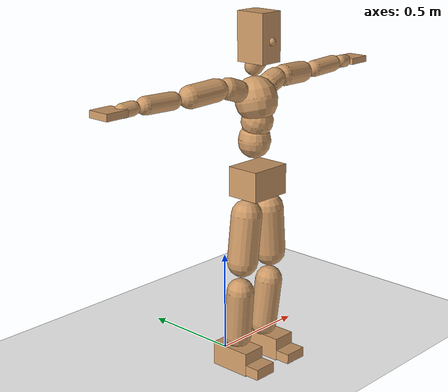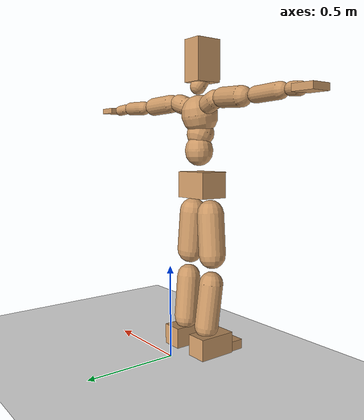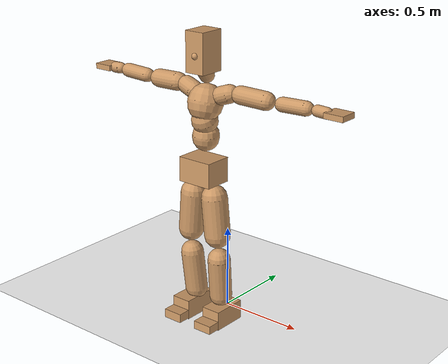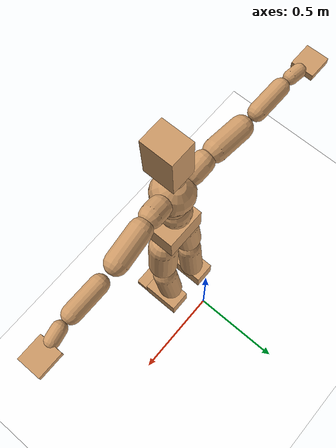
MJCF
<mujoco model="humanoid">
  <option integrator="implicitfast" />

  <visual>
    <global offwidth="1280" offheight="960" />
    <headlight active="1" ambient="0.34 0.34 0.34" diffuse="0.5 0.5 0.5" />
  </visual>

  <default>
    <joint damping="2" stiffness="2" armature="0.01" limited="true" solimplimit="0 .99 .01" />
    <geom condim="1" friction="0.7 0.005 0.0001" solimp=".99 .99 .003" solref="0.015 1" margin="0.001" rgba="0.8 0.6 .4 1" />
    <default class="smplcontact">
      <geom condim="3" friction="1. 0.005 0.0001" solref="0.015 1" solimp="0.98 0.98 0.001" priority="1" />
    </default>
    <default class="stiff_medium">
      <joint stiffness="10" />
    </default>
    <default class="stiff_medium_higher">
      <joint stiffness="50" />
    </default>
    <default class="stiff_high">
      <joint stiffness="100" />
    </default>
  </default>

  <asset>
    <texture type="skybox" builtin="gradient" rgb1="0.99 0.99 0.99" rgb2="0.608 0.828 0.892" width="100" />
    <texture builtin="flat" height="1278" mark="cross" markrgb="1 1 1" name="texgeom" random="0.01" rgb1="0.8 0.6 0.4" rgb2="0.8 0.6 0.4" type="cube" width="127" />
    <texture name="texplane" type="2d" builtin="checker" markrgb="1 1 1" rgb1="0.756 0.772 0.76" rgb2="0.6 0.6 0.6" width="100" height="100" />
    <material name="MatPlane" reflectance="0.5" texture="texplane" texrepeat="1 1" texuniform="true" />
    <material name="geom" texture="texgeom" texuniform="true" />
  </asset>

  <worldbody>
    <light name="tracking_light" pos="0 0 7" dir="0 0 -1" directional="true" cutoff="100" exponent="1" diffuse="1 1 1" specular="0.1 0.1 0.1" mode="trackcom" />
    <camera name="back" pos="0 3 2.4" xyaxes="-1 0 0 0 -1 2" mode="trackcom" />
    <camera name="side" pos="-3 0 2.4" xyaxes="0 -1 0 1 0 2" mode="trackcom" />
    <camera name="front_side" pos="-2.8 -2.8 0.8" xyaxes="0.5 -0.5 0 0.1 0.1 1" mode="trackcom" />
    <geom condim="3" name="floor" pos="0 0 0" rgba="1 1 1 1" size="100 100 .2" type="plane" material="MatPlane" />
    <body name="Pelvis" pos="-0.0018 -0.2233 0.947455" euler="90 0 0">
      <site name="Pelvis" size="0.01" />
      <freejoint name="Pelvis" />
      <geom type="box" pos="-0.0000 -0.0121 -0.0055" size="0.1069 0.0722 0.083" quat="1.0000 0.0000 0.0000 0.0000" density="3165.830099" name="Pelvis" />
      <body name="L_Hip" pos="0.0695 -0.0914 -0.0068">
        <joint name="L_Hip_x" type="hinge" pos="0 0 0" axis="1 0 0" stiffness="16.13493869047619" range="-160.0 22.92" class="stiff_medium" damping="24.55885271779949" armature="0.01661369799579579"/>
        <joint name="L_Hip_y" type="hinge" pos="0 0 0" axis="0 1 0" stiffness="16.194687023809525" range="-70.0 70.0" class="stiff_medium" damping="18.541803020486945" armature="0.021229089438103026"/>
        <joint name="L_Hip_z" type="hinge" pos="0 0 0" axis="0 0 1" stiffness="16.18070773809524" range="-28.65 90.0" class="stiff_medium" damping="16.392298540228513" armature="0.016606656258881882"/>
        <geom type="capsule" density="2040.816327" fromto="0.0069 -0.075 -0.0009 0.0274 -0.3002 -0.0036" size="0.0753375" name="L_Hip" />
        <body name="L_Knee" pos="0.0343 -0.3752 -0.0045">
          <joint name="L_Knee_x" type="hinge" pos="0 0 0" axis="1 0 0" range="-5.16 171.89" damping="13.54447440522032" armature="0.01730175880037872" stiffness="3.313477928571429"/>
          <joint name="L_Knee_y" type="hinge" pos="0 0 0" axis="0 1 0" range="-4.58 6.88" damping="15.158385271150497" armature="0.022087525027663247" stiffness="3.2509392142857143"/>
          <joint name="L_Knee_z" type="hinge" pos="0 0 0" axis="0 0 1" range="-6.88 4.58" damping="13.5403869310766" armature="0.01726592511223657" stiffness="3.318350976190476"/>
          <geom type="capsule" density="1234.567901" fromto="-0.0027 -0.0796 -0.0087 -0.0109 -0.3184 -0.035" size="0.0662725" name="L_Knee" />
          <body name="L_Ankle" pos="-0.0136 -0.398 -0.0437">
            <joint name="L_Ankle_x" type="hinge" pos="0 0 0" axis="1 0 0" range="-45.84 45.84" class="stiff_medium" damping="11.93723051567268" armature="0.021532573295139096" stiffness="18.382675714285718"/>
            <joint name="L_Ankle_y" type="hinge" pos="0 0 0" axis="0 1 0" range="-74.48 22.92" class="stiff_medium" damping="5.99974472031256" armature="0.02175775763310827" stiffness="18.382683095238093"/>
            <joint name="L_Ankle_z" type="hinge" pos="0 0 0" axis="0 0 1" range="-4.58 4.58" class="stiff_medium" damping="12.399335824641096" armature="0.0232319263369045" stiffness="18.3826925"/>
            <geom type="box" pos="0.0233 -0.0239 0.0242" size="0.0591675 0.05684 0.104125" quat="1.0000 0.0000 0.0000 0.0000" density="449.071558" name="L_Ankle" class="smplcontact" />
            <body name="L_Toe" pos="0.0264 -0.0558 0.1193">
              <joint name="L_Toe_x" type="hinge" pos="0 0 0" axis="1 0 0" range="-91.67 22.92" armature="0.024086673652259298" damping="4.208454026268749" stiffness="3.676532000000001"/>
              <joint name="L_Toe_y" type="hinge" pos="0 0 0" axis="0 1 0" range="-4.58 4.58" armature="0.025120286557535794" damping="4.297802633391864" stiffness="3.676532000000001"/>
              <joint name="L_Toe_z" type="hinge" pos="0 0 0" axis="0 0 1" range="-4.58 4.58" armature="0.027210196218038996" damping="4.473011449167091" stiffness="3.676532000000001"/>
              <geom type="box" pos="-0.003 0.0055 0.0248" size="0.058555 0.0245 0.06076" quat="1.0000 0.0000 0.0000 0.0000" density="423.206892" name="L_Toe" class="smplcontact" />
            </body>
          </body>
        </body>
      </body>
      <body name="R_Hip" pos="-0.0677 -0.0905 -0.0043">
        <joint name="R_Hip_x" type="hinge" pos="0 0 0" axis="1 0 0" stiffness="16.13493869047619" range="-160.0 22.92" class="stiff_medium" damping="24.55885271779949" armature="0.01661369799579579"/>
        <joint name="R_Hip_y" type="hinge" pos="0 0 0" axis="0 1 0" stiffness="16.194687023809525" range="-70.0 70.0" class="stiff_medium" damping="18.541803020486945" armature="0.021229089438103026"/>
        <joint name="R_Hip_z" type="hinge" pos="0 0 0" axis="0 0 1" stiffness="16.18070773809524" range="-90.0 28.65" class="stiff_medium" damping="16.392298540228513" armature="0.016606656258881882"/>
        <geom type="capsule" density="2040.816327" fromto="-0.0077 -0.0765 -0.0018 -0.0306 -0.3061 -0.0071" size="0.074235" name="R_Hip" />
        <body name="R_Knee" pos="-0.0383 -0.3826 -0.0089">
          <joint name="R_Knee_x" type="hinge" pos="0 0 0" axis="1 0 0" range="-5.16 171.89" damping="13.54447440522032" armature="0.01730175880037872" stiffness="3.313477928571429"/>
          <joint name="R_Knee_y" type="hinge" pos="0 0 0" axis="0 1 0" range="-6.88 4.58" damping="15.158385271150497" armature="0.022087525027663247" stiffness="3.2509392142857143"/>
          <joint name="R_Knee_z" type="hinge" pos="0 0 0" axis="0 0 1" range="-4.58 6.88" damping="13.5403869310766" armature="0.01726592511223657" stiffness="3.318350976190476"/>
          <geom type="capsule" density="1234.567901" fromto="0.0032 -0.0797 -0.0085 0.0126 -0.3187 -0.0338" size="0.0662725" name="R_Knee" />
          <body name="R_Ankle" pos="0.0158 -0.3984 -0.0423">
            <joint name="R_Ankle_x" type="hinge" pos="0 0 0" axis="1 0 0" range="-45.84 45.84" class="stiff_medium" damping="11.93723051567268" armature="0.021532573295139096" stiffness="18.382675714285718"/>
            <joint name="R_Ankle_y" type="hinge" pos="0 0 0" axis="0 1 0" range="-22.92 74.48" class="stiff_medium" damping="5.99974472031256" armature="0.02175775763310827" stiffness="18.382683095238093"/>
            <joint name="R_Ankle_z" type="hinge" pos="0 0 0" axis="0 0 1" range="-4.58 4.58" class="stiff_medium" damping="12.399335824641096" armature="0.0232319263369045" stiffness="18.3826925"/>
            <geom type="box" pos="-0.0212 -0.0174 0.0256" size="0.0591675 0.058555 0.105963" quat="1.0000 0.0000 0.0000 0.0000" density="434.700981" name="R_Ankle" class="smplcontact" />
            <body name="R_Toe" pos="-0.0254 -0.0481 0.1233">
              <joint name="R_Toe_x" type="hinge" pos="0 0 0" axis="1 0 0" range="-91.67 22.92" armature="0.024086673652259298" damping="4.208454026268749" stiffness="3.676532000000001"/>
              <joint name="R_Toe_y" type="hinge" pos="0 0 0" axis="0 1 0" range="-4.58 4.58" armature="0.025120286557535794" damping="4.297802633391864" stiffness="3.676532000000001"/>
              <joint name="R_Toe_z" type="hinge" pos="0 0 0" axis="0 0 1" range="-4.58 4.58" armature="0.027210196218038996" damping="4.473011449167091" stiffness="3.676532000000001"/>
              <geom type="box" pos="0.0042 0.0045 0.0227" size="0.0586775 0.02646 0.0603925" quat="1.0000 0.0000 0.0000 0.0000" density="407.384095" name="R_Toe" class="smplcontact" />
            </body>
          </body>
        </body>
      </body>
      <body name="Torso" pos="-0.0025 0.109 -0.0267">
        <joint name="Torso_x" type="hinge" pos="0 0 0" axis="1 0 0" range="-25.78 57.3" class="stiff_medium" damping="14.999999999999998" armature="0.009999999999999998" stiffness="10.0"/>
        <joint name="Torso_y" type="hinge" pos="0 0 0" axis="0 1 0" range="-57.3 57.3" class="stiff_high" damping="20.0" armature="0.010000000000000002" stiffness="100.0"/>
        <joint name="Torso_z" type="hinge" pos="0 0 0" axis="0 0 1" range="-34.38 34.38" class="stiff_high" damping="19.999999999999996" armature="0.009999999999999998" stiffness="100.0"/>
        <geom type="capsule" density="2040.816327" fromto="0.0025 0.0608 0.0005 0.003 0.0743 0.0006" size="0.0769" name="Torso" />
        <body name="Spine" pos="0.0055 0.1352 0.0011">
          <joint name="Spine_x" type="hinge" pos="0 0 0" axis="1 0 0" stiffness="10.0" range="-25.78 57.3" class="stiff_medium" damping="15.0" armature="0.01"/>
          <joint name="Spine_y" type="hinge" pos="0 0 0" axis="0 1 0" stiffness="10.0" range="-57.3 57.3" class="stiff_high" damping="8.0" armature="0.010000000000000002"/>
          <joint name="Spine_z" type="hinge" pos="0 0 0" axis="0 0 1" stiffness="20.0" range="-34.38 34.38" class="stiff_high" damping="12.0" armature="0.01"/>
          <geom type="capsule" density="2040.816327" fromto="0.0007 0.0238 0.0114 0.0008 0.0291 0.014" size="0.0755" name="Spine" />
          <body name="Chest" pos="0.0015 0.0529 0.0254">
            <joint name="Chest_x" type="hinge" pos="0 0 0" axis="1 0 0" stiffness="10.0" range="-25.78 57.3" class="stiff_medium" damping="14.999999999999993" armature="0.009999999999999993"/>
            <joint name="Chest_y" type="hinge" pos="0 0 0" axis="0 1 0" stiffness="10.0" range="-57.3 57.3" class="stiff_high" damping="8.0" armature="0.010000000000000002"/>
            <joint name="Chest_z" type="hinge" pos="0 0 0" axis="0 0 1" stiffness="20.0" range="-34.38 34.38" class="stiff_high" damping="12.0" armature="0.01"/>
            <geom type="capsule" density="2040.816327" fromto="-0.0009 0.0682 -0.0173 -0.001 0.0833 -0.0212" size="0.1002" name="Chest" />
            <body name="Neck" pos="-0.0028 0.2139 -0.0429">
              <joint name="Neck_x" type="hinge" pos="0 0 0" axis="1 0 0" range="-28.65 57.3" class="stiff_medium_higher" damping="9.99999999999999" armature="0.00999999999999998" stiffness="50.0"/>
              <joint name="Neck_y" type="hinge" pos="0 0 0" axis="0 1 0" range="-40.11 40.11" class="stiff_medium_higher" damping="10.0" armature="0.010000000000000002" stiffness="50.0"/>
              <joint name="Neck_z" type="hinge" pos="0 0 0" axis="0 0 1" range="-40.11 40.11" class="stiff_medium_higher" damping="10.0" armature="0.010000000000000002" stiffness="50.0"/>
              <geom type="capsule" density="1000" fromto="0.001 0.013 0.0103 0.0041 0.052 0.0411" size="0.0436" name="Neck" />
              <body name="Head" pos="0.0052 0.065 0.0513">
                <joint name="Head_x" type="hinge" pos="0 0 0" axis="1 0 0" range="-28.65 57.3" class="stiff_medium_higher" damping="1.9999999999999953" armature="0.009999999999999955" stiffness="50.0"/>
                <joint name="Head_y" type="hinge" pos="0 0 0" axis="0 1 0" range="-40.11 40.11" class="stiff_medium_higher" damping="2.0" armature="0.01" stiffness="50.0"/>
                <joint name="Head_z" type="hinge" pos="0 0 0" axis="0 0 1" range="-40.11 40.11" class="stiff_medium_higher" damping="2.0" armature="0.01" stiffness="50.0"/>
                <geom type="box" pos="-0.0042 0.0876 -0.0116" size="0.0606 0.1154 0.076" quat="1.0000 0.0000 0.0000 0.0000" density="1018.069894" name="Head" />
                <geom type="capsule" name="nose" size="0.02 0.01" pos="0 0.07 0.05" quat="1 0 0 0" mass="0" contype="0" conaffinity="0" />
              </body>
            </body>
            <body name="L_Thorax" pos="0.0788 0.1217 -0.0341">
              <joint name="L_Thorax_x" type="hinge" pos="0 0 0" axis="1 0 0" range="-10.89 4.58" class="stiff_medium_higher" damping="19.999999999999684" armature="0.009999999999999684" stiffness="50.0"/>
              <joint name="L_Thorax_y" type="hinge" pos="0 0 0" axis="0 1 0" range="-28.65 17.19" class="stiff_medium_higher" damping="20.0" armature="0.010000000000000002" stiffness="50.0"/>
              <joint name="L_Thorax_z" type="hinge" pos="0 0 0" axis="0 0 1" range="-31.51 40.11" class="stiff_medium_higher" damping="19.999999999999996" armature="0.009999999999999998" stiffness="50.0"/>
              <geom type="capsule" density="1000" fromto="0.0182 0.0061 -0.0018 0.0728 0.0244 -0.0071" size="0.0521" name="L_Thorax" />
              <body name="L_Shoulder" pos="0.091 0.0305 -0.0089">
                <joint name="L_Shoulder_x" type="hinge" pos="0 0 0" axis="1 0 0" range="-97.4 97.4" class="stiff_medium" damping="5.99999999999995" armature="0.009999999999999835" stiffness="10.0"/>
                <joint name="L_Shoulder_y" type="hinge" pos="0 0 0" axis="0 1 0" range="-108.86 80.21" class="stiff_medium" damping="6.0" armature="0.010000000000000002" stiffness="10.0"/>
                <joint name="L_Shoulder_z" type="hinge" pos="0 0 0" axis="0 0 1" range="-97.4 85.94" class="stiff_medium" damping="6.0" armature="0.01" stiffness="10.0"/>
                <geom type="capsule" density="1000" fromto="0.0519 -0.0026 -0.0055 0.2077 -0.0102 -0.022" size="0.0517" name="L_Shoulder" />
                <body name="L_Elbow" pos="0.2596 -0.0128 -0.0275">
                  <joint name="L_Elbow_x" type="hinge" pos="0 0 0" axis="1 0 0" range="-17.19 4.58" damping="4.999999999999892" armature="0.009999999999999565" stiffness="2.0"/>
                  <joint name="L_Elbow_y" type="hinge" pos="0 0 0" axis="0 1 0" range="-180.0 17.19" damping="5.000000000000001" armature="0.010000000000000007" stiffness="2.0"/>
                  <joint name="L_Elbow_z" type="hinge" pos="0 0 0" axis="0 0 1" range="-100.84 4.58" damping="5.000000000000004" armature="0.010000000000000018" stiffness="2.0"/>
                  <geom type="capsule" density="1000" fromto="0.0498 0.0018 -0.0002 0.1994 0.0072 -0.0009" size="0.0405" name="L_Elbow" />
                  <body name="L_Wrist" pos="0.2492 0.009 -0.0012">
                    <joint name="L_Wrist_x" type="hinge" pos="0 0 0" axis="1 0 0" range="-180.0 22.92" armature="0.009999999999999577" damping="1.9999999999999576" stiffness="2.0"/>
                    <joint name="L_Wrist_y" type="hinge" pos="0 0 0" axis="0 1 0" range="-17.19 17.19" armature="0.00999999999999997" damping="1.9999999999999971" stiffness="2.0"/>
                    <joint name="L_Wrist_z" type="hinge" pos="0 0 0" axis="0 0 1" range="-22.92 22.92" armature="0.009999999999999818" damping="1.9999999999999818" stiffness="2.0"/>
                    <geom type="capsule" density="1000" fromto="0.0168 -0.0016 -0.003 0.0672 -0.0065 -0.012" size="0.0318" name="L_Wrist" class="smplcontact" />
                    <body name="L_Hand" pos="0.084 -0.0082 -0.0149">
                      <joint name="L_Hand_x" type="hinge" pos="0 0 0" axis="1 0 0" range="-17.19 17.19" armature="0.009999999999999953" damping="1.9999999999999953" stiffness="2.0"/>
                      <joint name="L_Hand_y" type="hinge" pos="0 0 0" axis="0 1 0" range="-51.57 51.57" armature="0.01000000000000012" damping="2.000000000000012" stiffness="2.0"/>
                      <joint name="L_Hand_z" type="hinge" pos="0 0 0" axis="0 0 1" range="-91.67 91.67" armature="0.010000000000000285" damping="2.0000000000000284" stiffness="2.0"/>
                      <geom type="box" pos="0.0493 0.001 -0.0058" size="0.0585 0.0158 0.0538" quat="1.0000 0.0000 0.0000 0.0000" density="400.552564" name="L_Hand" class="smplcontact" />
                    </body>
                  </body>
                </body>
              </body>
            </body>
            <body name="R_Thorax" pos="-0.0818 0.1188 -0.0386">
              <joint name="R_Thorax_x" type="hinge" pos="0 0 0" axis="1 0 0" range="-10.89 4.58" class="stiff_medium_higher" damping="19.999999999999684" armature="0.009999999999999684" stiffness="50.0"/>
              <joint name="R_Thorax_y" type="hinge" pos="0 0 0" axis="0 1 0" range="-17.19 28.65" class="stiff_medium_higher" damping="20.0" armature="0.010000000000000002" stiffness="50.0"/>
              <joint name="R_Thorax_z" type="hinge" pos="0 0 0" axis="0 0 1" range="-40.11 31.51" class="stiff_medium_higher" damping="19.999999999999996" armature="0.009999999999999998" stiffness="50.0"/>
              <geom type="capsule" density="1000" fromto="-0.0192 0.0065 -0.0018 -0.0768 0.026 -0.0073" size="0.0511" name="R_Thorax" />
              <body name="R_Shoulder" pos="-0.096 0.0326 -0.0091">
                <joint name="R_Shoulder_x" type="hinge" pos="0 0 0" axis="1 0 0" range="-97.4 97.4" class="stiff_medium" damping="5.99999999999995" armature="0.009999999999999835" stiffness="10.0"/>
                <joint name="R_Shoulder_y" type="hinge" pos="0 0 0" axis="0 1 0" range="-80.21 108.86" class="stiff_medium" damping="6.0" armature="0.010000000000000002" stiffness="10.0"/>
                <joint name="R_Shoulder_z" type="hinge" pos="0 0 0" axis="0 0 1" range="-85.94 97.4" class="stiff_medium" damping="6.0" armature="0.01" stiffness="10.0"/>
                <geom type="capsule" density="1000" fromto="-0.0507 -0.0027 -0.0043 -0.203 -0.0107 -0.0171" size="0.0531" name="R_Shoulder" />
                <body name="R_Elbow" pos="-0.2537 -0.0133 -0.0214">
                  <joint name="R_Elbow_x" type="hinge" pos="0 0 0" axis="1 0 0" range="-17.19 4.58" damping="4.999999999999892" armature="0.009999999999999565" stiffness="2.0"/>
                  <joint name="R_Elbow_y" type="hinge" pos="0 0 0" axis="0 1 0" range="-17.19 180.0" damping="5.000000000000001" armature="0.010000000000000007" stiffness="2.0"/>
                  <joint name="R_Elbow_z" type="hinge" pos="0 0 0" axis="0 0 1" range="-4.58 100.84" damping="5.000000000000004" armature="0.010000000000000018" stiffness="2.0"/>
                  <geom type="capsule" density="1000" fromto="-0.0511 0.0016 -0.0011 -0.2042 0.0062 -0.0044" size="0.0408" name="R_Elbow" />
                  <body name="R_Wrist" pos="-0.2553 0.0078 -0.0056">
                    <joint name="R_Wrist_x" type="hinge" pos="0 0 0" axis="1 0 0" range="-180.0 22.92" armature="0.009999999999999577" damping="1.9999999999999576" stiffness="2.0"/>
                    <joint name="R_Wrist_y" type="hinge" pos="0 0 0" axis="0 1 0" range="-17.19 17.19" armature="0.00999999999999997" damping="1.9999999999999971" stiffness="2.0"/>
                    <joint name="R_Wrist_z" type="hinge" pos="0 0 0" axis="0 0 1" range="-22.92 22.92" armature="0.009999999999999818" damping="1.9999999999999818" stiffness="2.0"/>
                    <geom type="capsule" density="1000" fromto="-0.0169 -0.0012 -0.0021 -0.0677 -0.0049 -0.0083" size="0.0326" name="R_Wrist" class="smplcontact" />
                    <body name="R_Hand" pos="-0.0846 -0.0061 -0.0103">
                      <joint name="R_Hand_x" type="hinge" pos="0 0 0" axis="1 0 0" range="-17.19 17.19" armature="0.009999999999999953" damping="1.9999999999999953" stiffness="2.0"/>
                      <joint name="R_Hand_y" type="hinge" pos="0 0 0" axis="0 1 0" range="-51.57 51.57" armature="0.01000000000000012" damping="2.000000000000012" stiffness="2.0"/>
                      <joint name="R_Hand_z" type="hinge" pos="0 0 0" axis="0 0 1" range="-91.67 91.67" armature="0.010000000000000285" damping="2.0000000000000284" stiffness="2.0"/>
                      <geom type="box" pos="-0.0462 -0.0009 -0.0079" size="0.0569 0.0164 0.0546" quat="1.0000 0.0000 0.0000 0.0000" density="403.679611" name="R_Hand" class="smplcontact" />
                    </body>
                  </body>
                </body>
              </body>
            </body>
          </body>
        </body>
      </body>
    </body>
  </worldbody>
  <actuator>
    <general name="L_Hip_x" joint="L_Hip_x" biastype="affine" gainprm="463.6052968140892" biasprm="-347.4251808838582 -290.4288964285714 -3.274513695706599" ctrllimited="true" ctrlrange="-1 1" forcerange="-580.8577928571428 580.8577928571428" />
    <general name="L_Hip_y" joint="L_Hip_y" biastype="affine" gainprm="356.13976846830167" biasprm="0.0 -291.5043664285714 -3.7083606040973893" ctrllimited="true" ctrlrange="-1 1" forcerange="-583.0087328571428 583.0087328571428" />
    <general name="L_Hip_z" joint="L_Hip_z" biastype="affine" gainprm="301.56791486150905" biasprm="155.93081817744272 -291.25273928571437 -3.2784597080457027" ctrllimited="true" ctrlrange="-1 1" forcerange="-582.5054785714287 582.5054785714287" />
    <general name="L_Knee_x" joint="L_Knee_x" biastype="affine" gainprm="460.75482785574064" biasprm="433.8980652267023 -298.2130135714286 -3.38611860130508" ctrllimited="true" ctrlrange="-1 1" forcerange="-596.4260271428572 596.4260271428572" />
    <general name="L_Knee_y" joint="L_Knee_y" biastype="affine" gainprm="29.26060814696388" biasprm="5.87254788289851 -292.58452928571427 -3.789596317787624" ctrllimited="true" ctrlrange="-1 1" forcerange="-585.1690585714285 585.1690585714285" />
    <general name="L_Knee_z" joint="L_Knee_z" biastype="affine" gainprm="29.867358694905164" biasprm="-5.994321553078698 -298.65158785714283 -3.38509673276915" ctrllimited="true" ctrlrange="-1 1" forcerange="-597.3031757142857 597.3031757142857" />
    <general name="L_Ankle_x" joint="L_Ankle_x" biastype="affine" gainprm="132.36501461602552" biasprm="0.0 -165.44408142857145 -3.97907683855756" ctrllimited="true" ctrlrange="-1 1" forcerange="-330.8881628571429 330.8881628571429" />
    <general name="L_Ankle_y" joint="L_Ankle_y" biastype="affine" gainprm="140.62344677243073" biasprm="-74.44091289103211 -165.44414785714287 -3.999829813541706" ctrllimited="true" ctrlrange="-1 1" forcerange="-330.88829571428573 330.88829571428573" />
    <general name="L_Ankle_z" joint="L_Ankle_z" biastype="affine" gainprm="13.224963361864843" biasprm="0.0 -165.44423250000003 -4.133111941547032" ctrllimited="true" ctrlrange="-1 1" forcerange="-330.88846500000005 330.88846500000005" />
    <general name="L_Toe_x" joint="L_Toe_x" biastype="affine" gainprm="132.3533512989122" biasprm="-79.40739071297855 -132.35515200000003 -1.6833816105074995" ctrllimited="true" ctrlrange="-1 1" forcerange="-264.71030400000006 264.71030400000006" />
    <general name="L_Toe_y" joint="L_Toe_y" biastype="affine" gainprm="10.579951984449217" biasprm="0.0 -132.35515200000003 -1.7191210533567458" ctrllimited="true" ctrlrange="-1 1" forcerange="-264.71030400000006 264.71030400000006" />
    <general name="L_Toe_z" joint="L_Toe_z" biastype="affine" gainprm="10.579951984449217" biasprm="0.0 -132.35515200000003 -1.7892045796668363" ctrllimited="true" ctrlrange="-1 1" forcerange="-264.71030400000006 264.71030400000006" />
    <general name="R_Hip_x" joint="R_Hip_x" biastype="affine" gainprm="463.6052968140892" biasprm="-347.4251808838582 -290.4288964285714 -3.274513695706599" ctrllimited="true" ctrlrange="-1 1" forcerange="-580.8577928571428 580.8577928571428" />
    <general name="R_Hip_y" joint="R_Hip_y" biastype="affine" gainprm="356.13976846830167" biasprm="0.0 -291.5043664285714 -3.7083606040973893" ctrllimited="true" ctrlrange="-1 1" forcerange="-583.0087328571428 583.0087328571428" />
    <general name="R_Hip_z" joint="R_Hip_z" biastype="affine" gainprm="301.56791486150905" biasprm="-155.93081817744272 -291.25273928571437 -3.2784597080457027" ctrllimited="true" ctrlrange="-1 1" forcerange="-582.5054785714287 582.5054785714287" />
    <general name="R_Knee_x" joint="R_Knee_x" biastype="affine" gainprm="460.75482785574064" biasprm="433.8980652267023 -298.2130135714286 -3.38611860130508" ctrllimited="true" ctrlrange="-1 1" forcerange="-596.4260271428572 596.4260271428572" />
    <general name="R_Knee_y" joint="R_Knee_y" biastype="affine" gainprm="29.26060814696388" biasprm="-5.87254788289851 -292.58452928571427 -3.789596317787624" ctrllimited="true" ctrlrange="-1 1" forcerange="-585.1690585714285 585.1690585714285" />
    <general name="R_Knee_z" joint="R_Knee_z" biastype="affine" gainprm="29.867358694905164" biasprm="5.994321553078698 -298.65158785714283 -3.38509673276915" ctrllimited="true" ctrlrange="-1 1" forcerange="-597.3031757142857 597.3031757142857" />
    <general name="R_Ankle_x" joint="R_Ankle_x" biastype="affine" gainprm="132.36501461602552" biasprm="0.0 -165.44408142857145 -3.97907683855756" ctrllimited="true" ctrlrange="-1 1" forcerange="-330.8881628571429 330.8881628571429" />
    <general name="R_Ankle_y" joint="R_Ankle_y" biastype="affine" gainprm="140.62344677243073" biasprm="74.44091289103211 -165.44414785714287 -3.999829813541706" ctrllimited="true" ctrlrange="-1 1" forcerange="-330.88829571428573 330.88829571428573" />
    <general name="R_Ankle_z" joint="R_Ankle_z" biastype="affine" gainprm="13.224963361864843" biasprm="0.0 -165.44423250000003 -4.133111941547032" ctrllimited="true" ctrlrange="-1 1" forcerange="-330.88846500000005 330.88846500000005" />
    <general name="R_Toe_x" joint="R_Toe_x" biastype="affine" gainprm="132.3533512989122" biasprm="-79.40739071297855 -132.35515200000003 -1.6833816105074995" ctrllimited="true" ctrlrange="-1 1" forcerange="-264.71030400000006 264.71030400000006" />
    <general name="R_Toe_y" joint="R_Toe_y" biastype="affine" gainprm="10.579951984449217" biasprm="0.0 -132.35515200000003 -1.7191210533567458" ctrllimited="true" ctrlrange="-1 1" forcerange="-264.71030400000006 264.71030400000006" />
    <general name="R_Toe_z" joint="R_Toe_z" biastype="affine" gainprm="10.579951984449217" biasprm="0.0 -132.35515200000003 -1.7892045796668363" ctrllimited="true" ctrlrange="-1 1" forcerange="-264.71030400000006 264.71030400000006" />
    <general name="Torso_x" joint="Torso_x" biastype="affine" gainprm="174.00234510682668" biasprm="66.0153336274335 -240.0 -3.9999999999999996" ctrllimited="true" ctrlrange="-1 1" forcerange="-360.0 360.0" />
    <general name="Torso_y" joint="Torso_y" biastype="affine" gainprm="240.0176787342602" biasprm="0.0 -240.0 -4.0" ctrllimited="true" ctrlrange="-1 1" forcerange="-360.0 360.0" />
    <general name="Torso_z" joint="Torso_z" biastype="affine" gainprm="144.01060724055614" biasprm="0.0 -240.0 -3.9999999999999996" ctrllimited="true" ctrlrange="-1 1" forcerange="-360.0 360.0" />
    <general name="Spine_x" joint="Spine_x" biastype="affine" gainprm="174.00234510682668" biasprm="66.0153336274335 -240.0 -4.0" ctrllimited="true" ctrlrange="-1 1" forcerange="-360.0 360.0" />
    <general name="Spine_y" joint="Spine_y" biastype="affine" gainprm="240.0176787342602" biasprm="0.0 -240.0 -4.0" ctrllimited="true" ctrlrange="-1 1" forcerange="-360.0 360.0" />
    <general name="Spine_z" joint="Spine_z" biastype="affine" gainprm="144.01060724055614" biasprm="0.0 -240.0 -4.0" ctrllimited="true" ctrlrange="-1 1" forcerange="-360.0 360.0" />
    <general name="Chest_x" joint="Chest_x" biastype="affine" gainprm="174.00234510682668" biasprm="66.0153336274335 -240.0 -3.9999999999999982" ctrllimited="true" ctrlrange="-1 1" forcerange="-360.0 360.0" />
    <general name="Chest_y" joint="Chest_y" biastype="affine" gainprm="240.0176787342602" biasprm="0.0 -240.0 -4.0" ctrllimited="true" ctrlrange="-1 1" forcerange="-360.0 360.0" />
    <general name="Chest_z" joint="Chest_z" biastype="affine" gainprm="144.01060724055614" biasprm="0.0 -240.0 -4.0" ctrllimited="true" ctrlrange="-1 1" forcerange="-360.0 360.0" />
    <general name="Neck_x" joint="Neck_x" biastype="affine" gainprm="27.00198885760427" biasprm="9.000662952534757 -36.0 -0.7999999999999993" ctrllimited="true" ctrlrange="-1 1" forcerange="-72.0 72.0" />
    <general name="Neck_y" joint="Neck_y" biastype="affine" gainprm="25.20185626709732" biasprm="0.0 -36.0 -0.8" ctrllimited="true" ctrlrange="-1 1" forcerange="-72.0 72.0" />
    <general name="Neck_z" joint="Neck_z" biastype="affine" gainprm="25.20185626709732" biasprm="0.0 -36.0 -0.8" ctrllimited="true" ctrlrange="-1 1" forcerange="-72.0 72.0" />
    <general name="Head_x" joint="Head_x" biastype="affine" gainprm="18.001325905069514" biasprm="6.000441968356505 -24.0 -0.7999999999999982" ctrllimited="true" ctrlrange="-1 1" forcerange="-48.0 48.0" />
    <general name="Head_y" joint="Head_y" biastype="affine" gainprm="16.801237511398213" biasprm="0.0 -24.0 -0.8" ctrllimited="true" ctrlrange="-1 1" forcerange="-48.0 48.0" />
    <general name="Head_z" joint="Head_z" biastype="affine" gainprm="16.801237511398213" biasprm="0.0 -24.0 -0.8" ctrllimited="true" ctrlrange="-1 1" forcerange="-48.0 48.0" />
    <general name="L_Thorax_x" joint="L_Thorax_x" biastype="affine" gainprm="16.200146117011364" biasprm="-6.6078165480505335 -120.0 -1.5999999999999748" ctrllimited="true" ctrlrange="-1 1" forcerange="-240.0 240.0" />
    <general name="L_Thorax_y" joint="L_Thorax_y" biastype="affine" gainprm="48.00353574685204" biasprm="-12.00088393671301 -120.0 -1.6" ctrllimited="true" ctrlrange="-1 1" forcerange="-240.0 240.0" />
    <general name="L_Thorax_z" joint="L_Thorax_z" biastype="affine" gainprm="75.00028861670033" biasprm="9.00589894029074 -120.0 -1.5999999999999999" ctrllimited="true" ctrlrange="-1 1" forcerange="-240.0 240.0" />
    <general name="L_Shoulder_x" joint="L_Shoulder_x" biastype="affine" gainprm="81.5976331892389" biasprm="0.0 -48.0 -1.599999999999987" ctrllimited="true" ctrlrange="-1 1" forcerange="-96.0 96.0" />
    <general name="L_Shoulder_y" joint="L_Shoulder_y" biastype="affine" gainprm="79.19745640189629" biasprm="-12.00088393671301 -48.0 -1.6" ctrllimited="true" ctrlrange="-1 1" forcerange="-96.0 96.0" />
    <general name="L_Shoulder_z" joint="L_Shoulder_z" biastype="affine" gainprm="76.79727961455369" biasprm="-4.800353574685214 -48.0 -1.6" ctrllimited="true" ctrlrange="-1 1" forcerange="-96.0 96.0" />
    <general name="L_Elbow_x" joint="L_Elbow_x" biastype="affine" gainprm="13.67849441372996" biasprm="-7.923096672353461 -72.0 -0.7999999999999826" ctrllimited="true" ctrlrange="-1 1" forcerange="-144.0 144.0" />
    <general name="L_Elbow_y" joint="L_Elbow_y" biastype="affine" gainprm="123.89813107227425" biasprm="-102.29653998619085 -72.0 -0.8000000000000003" ctrllimited="true" ctrlrange="-1 1" forcerange="-144.0 144.0" />
    <general name="L_Elbow_z" joint="L_Elbow_z" biastype="affine" gainprm="66.23733950828719" biasprm="-60.4819417669107 -72.0 -0.8000000000000007" ctrllimited="true" ctrlrange="-1 1" forcerange="-144.0 144.0" />
    <general name="L_Wrist_x" joint="L_Wrist_x" biastype="affine" gainprm="21.24973270888136" biasprm="-16.449379134196157 -12.0 -0.7999999999999831" ctrllimited="true" ctrlrange="-1 1" forcerange="-24.0 24.0" />
    <general name="L_Wrist_y" joint="L_Wrist_y" biastype="affine" gainprm="3.6002651810139037" biasprm="0.0 -12.0 -0.7999999999999989" ctrllimited="true" ctrlrange="-1 1" forcerange="-24.0 24.0" />
    <general name="L_Wrist_z" joint="L_Wrist_z" biastype="affine" gainprm="4.800353574685205" biasprm="0.0 -12.0 -0.7999999999999927" ctrllimited="true" ctrlrange="-1 1" forcerange="-24.0 24.0" />
    <general name="L_Hand_x" joint="L_Hand_x" biastype="affine" gainprm="3.6002651810139037" biasprm="0.0 -12.0 -0.7999999999999982" ctrllimited="true" ctrlrange="-1 1" forcerange="-24.0 24.0" />
    <general name="L_Hand_y" joint="L_Hand_y" biastype="affine" gainprm="10.800795543041708" biasprm="0.0 -12.0 -0.8000000000000048" ctrllimited="true" ctrlrange="-1 1" forcerange="-24.0 24.0" />
    <general name="L_Hand_z" joint="L_Hand_z" biastype="affine" gainprm="19.199319903638422" biasprm="0.0 -12.0 -0.8000000000000114" ctrllimited="true" ctrlrange="-1 1" forcerange="-24.0 24.0" />
    <general name="R_Thorax_x" joint="R_Thorax_x" biastype="affine" gainprm="16.200146117011364" biasprm="-6.6078165480505335 -120.0 -1.5999999999999748" ctrllimited="true" ctrlrange="-1 1" forcerange="-240.0 240.0" />
    <general name="R_Thorax_y" joint="R_Thorax_y" biastype="affine" gainprm="48.00353574685204" biasprm="12.000883936713002 -120.0 -1.6" ctrllimited="true" ctrlrange="-1 1" forcerange="-240.0 240.0" />
    <general name="R_Thorax_z" joint="R_Thorax_z" biastype="affine" gainprm="75.00028861670033" biasprm="-9.00589894029074 -120.0 -1.5999999999999999" ctrllimited="true" ctrlrange="-1 1" forcerange="-240.0 240.0" />
    <general name="R_Shoulder_x" joint="R_Shoulder_x" biastype="affine" gainprm="81.5976331892389" biasprm="0.0 -48.0 -1.599999999999987" ctrllimited="true" ctrlrange="-1 1" forcerange="-96.0 96.0" />
    <general name="R_Shoulder_y" joint="R_Shoulder_y" biastype="affine" gainprm="79.19745640189629" biasprm="12.00088393671301 -48.0 -1.6" ctrllimited="true" ctrlrange="-1 1" forcerange="-96.0 96.0" />
    <general name="R_Shoulder_z" joint="R_Shoulder_z" biastype="affine" gainprm="76.79727961455369" biasprm="4.800353574685204 -48.0 -1.6" ctrllimited="true" ctrlrange="-1 1" forcerange="-96.0 96.0" />
    <general name="R_Elbow_x" joint="R_Elbow_x" biastype="affine" gainprm="13.67849441372996" biasprm="-7.923096672353461 -72.0 -0.7999999999999826" ctrllimited="true" ctrlrange="-1 1" forcerange="-144.0 144.0" />
    <general name="R_Elbow_y" joint="R_Elbow_y" biastype="affine" gainprm="123.89813107227425" biasprm="102.29653998619085 -72.0 -0.8000000000000003" ctrllimited="true" ctrlrange="-1 1" forcerange="-144.0 144.0" />
    <general name="R_Elbow_z" joint="R_Elbow_z" biastype="affine" gainprm="66.23733950828719" biasprm="60.481941766910694 -72.0 -0.8000000000000007" ctrllimited="true" ctrlrange="-1 1" forcerange="-144.0 144.0" />
    <general name="R_Wrist_x" joint="R_Wrist_x" biastype="affine" gainprm="21.24973270888136" biasprm="-16.449379134196157 -12.0 -0.7999999999999831" ctrllimited="true" ctrlrange="-1 1" forcerange="-24.0 24.0" />
    <general name="R_Wrist_y" joint="R_Wrist_y" biastype="affine" gainprm="3.6002651810139037" biasprm="0.0 -12.0 -0.7999999999999989" ctrllimited="true" ctrlrange="-1 1" forcerange="-24.0 24.0" />
    <general name="R_Wrist_z" joint="R_Wrist_z" biastype="affine" gainprm="4.800353574685205" biasprm="0.0 -12.0 -0.7999999999999927" ctrllimited="true" ctrlrange="-1 1" forcerange="-24.0 24.0" />
    <general name="R_Hand_x" joint="R_Hand_x" biastype="affine" gainprm="3.6002651810139037" biasprm="0.0 -12.0 -0.7999999999999982" ctrllimited="true" ctrlrange="-1 1" forcerange="-24.0 24.0" />
    <general name="R_Hand_y" joint="R_Hand_y" biastype="affine" gainprm="10.800795543041708" biasprm="0.0 -12.0 -0.8000000000000048" ctrllimited="true" ctrlrange="-1 1" forcerange="-24.0 24.0" />
    <general name="R_Hand_z" joint="R_Hand_z" biastype="affine" gainprm="19.199319903638422" biasprm="0.0 -12.0 -0.8000000000000114" ctrllimited="true" ctrlrange="-1 1" forcerange="-24.0 24.0" />
  </actuator>
  <contact>
    <exclude body1="Torso" body2="Chest" />
    <exclude body1="Head" body2="Chest" />
    <exclude body1="R_Knee" body2="R_Toe" />
    <exclude body1="R_Knee" body2="L_Ankle" />
    <exclude body1="R_Knee" body2="L_Toe" />
    <exclude body1="L_Knee" body2="L_Toe" />
    <exclude body1="L_Knee" body2="R_Ankle" />
    <exclude body1="L_Knee" body2="R_Toe" />
    <exclude body1="L_Shoulder" body2="Chest" />
    <exclude body1="R_Shoulder" body2="Chest" />
  </contact>
  <sensor>
    <framelinvel name="sensor_Pelvis_framelinvel" objtype="xbody" objname="Pelvis" />
    <framelinvel name="sensor_L_Hip_framelinvel" objtype="xbody" objname="L_Hip" />
    <framelinvel name="sensor_L_Knee_framelinvel" objtype="xbody" objname="L_Knee" />
    <framelinvel name="sensor_L_Ankle_framelinvel" objtype="xbody" objname="L_Ankle" />
    <framelinvel name="sensor_L_Toe_framelinvel" objtype="xbody" objname="L_Toe" />
    <framelinvel name="sensor_R_Hip_framelinvel" objtype="xbody" objname="R_Hip" />
    <framelinvel name="sensor_R_Knee_framelinvel" objtype="xbody" objname="R_Knee" />
    <framelinvel name="sensor_R_Ankle_framelinvel" objtype="xbody" objname="R_Ankle" />
    <framelinvel name="sensor_R_Toe_framelinvel" objtype="xbody" objname="R_Toe" />
    <framelinvel name="sensor_Torso_framelinvel" objtype="xbody" objname="Torso" />
    <framelinvel name="sensor_Spine_framelinvel" objtype="xbody" objname="Spine" />
    <framelinvel name="sensor_Chest_framelinvel" objtype="xbody" objname="Chest" />
    <framelinvel name="sensor_Neck_framelinvel" objtype="xbody" objname="Neck" />
    <framelinvel name="sensor_Head_framelinvel" objtype="xbody" objname="Head" />
    <framelinvel name="sensor_L_Thorax_framelinvel" objtype="xbody" objname="L_Thorax" />
    <framelinvel name="sensor_L_Shoulder_framelinvel" objtype="xbody" objname="L_Shoulder" />
    <framelinvel name="sensor_L_Elbow_framelinvel" objtype="xbody" objname="L_Elbow" />
    <framelinvel name="sensor_L_Wrist_framelinvel" objtype="xbody" objname="L_Wrist" />
    <framelinvel name="sensor_L_Hand_framelinvel" objtype="xbody" objname="L_Hand" />
    <framelinvel name="sensor_R_Thorax_framelinvel" objtype="xbody" objname="R_Thorax" />
    <framelinvel name="sensor_R_Shoulder_framelinvel" objtype="xbody" objname="R_Shoulder" />
    <framelinvel name="sensor_R_Elbow_framelinvel" objtype="xbody" objname="R_Elbow" />
    <framelinvel name="sensor_R_Wrist_framelinvel" objtype="xbody" objname="R_Wrist" />
    <framelinvel name="sensor_R_Hand_framelinvel" objtype="xbody" objname="R_Hand" />
    <frameangvel name="sensor_Pelvis_frameangvel" objtype="xbody" objname="Pelvis" />
    <frameangvel name="sensor_L_Hip_frameangvel" objtype="xbody" objname="L_Hip" />
    <frameangvel name="sensor_L_Knee_frameangvel" objtype="xbody" objname="L_Knee" />
    <frameangvel name="sensor_L_Ankle_frameangvel" objtype="xbody" objname="L_Ankle" />
    <frameangvel name="sensor_L_Toe_frameangvel" objtype="xbody" objname="L_Toe" />
    <frameangvel name="sensor_R_Hip_frameangvel" objtype="xbody" objname="R_Hip" />
    <frameangvel name="sensor_R_Knee_frameangvel" objtype="xbody" objname="R_Knee" />
    <frameangvel name="sensor_R_Ankle_frameangvel" objtype="xbody" objname="R_Ankle" />
    <frameangvel name="sensor_R_Toe_frameangvel" objtype="xbody" objname="R_Toe" />
    <frameangvel name="sensor_Torso_frameangvel" objtype="xbody" objname="Torso" />
    <frameangvel name="sensor_Spine_frameangvel" objtype="xbody" objname="Spine" />
    <frameangvel name="sensor_Chest_frameangvel" objtype="xbody" objname="Chest" />
    <frameangvel name="sensor_Neck_frameangvel" objtype="xbody" objname="Neck" />
    <frameangvel name="sensor_Head_frameangvel" objtype="xbody" objname="Head" />
    <frameangvel name="sensor_L_Thorax_frameangvel" objtype="xbody" objname="L_Thorax" />
    <frameangvel name="sensor_L_Shoulder_frameangvel" objtype="xbody" objname="L_Shoulder" />
    <frameangvel name="sensor_L_Elbow_frameangvel" objtype="xbody" objname="L_Elbow" />
    <frameangvel name="sensor_L_Wrist_frameangvel" objtype="xbody" objname="L_Wrist" />
    <frameangvel name="sensor_L_Hand_frameangvel" objtype="xbody" objname="L_Hand" />
    <frameangvel name="sensor_R_Thorax_frameangvel" objtype="xbody" objname="R_Thorax" />
    <frameangvel name="sensor_R_Shoulder_frameangvel" objtype="xbody" objname="R_Shoulder" />
    <frameangvel name="sensor_R_Elbow_frameangvel" objtype="xbody" objname="R_Elbow" />
    <frameangvel name="sensor_R_Wrist_frameangvel" objtype="xbody" objname="R_Wrist" />
    <frameangvel name="sensor_R_Hand_frameangvel" objtype="xbody" objname="R_Hand" />
    <subtreelinvel name="Chest_subtreelinvel" body="Chest" />
    <gyro name="Pelvis_gyro" site="Pelvis" />
  </sensor>
</mujoco>
